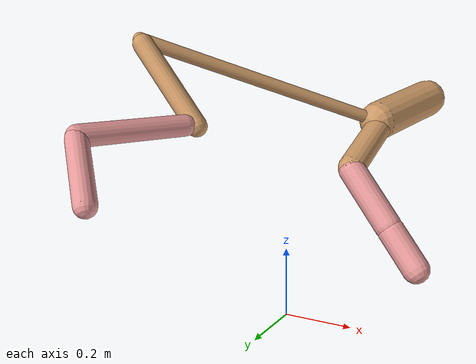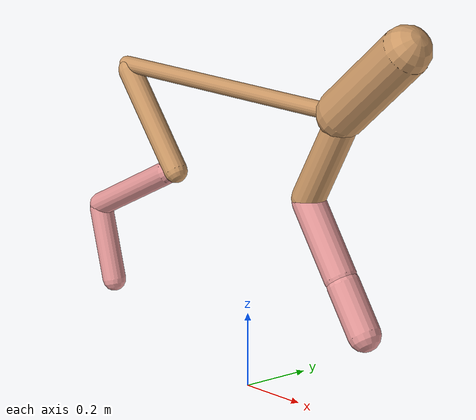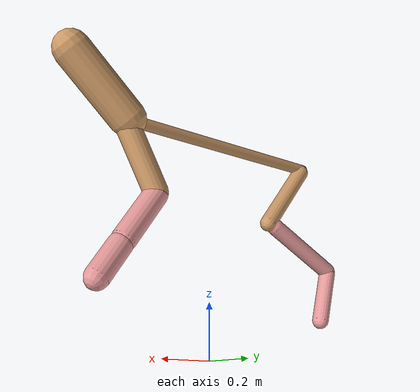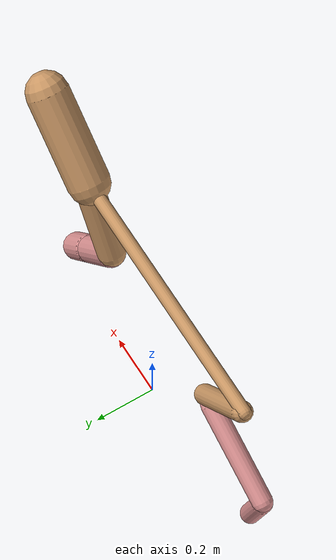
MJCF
<mujoco model="cheetah">
  <compiler angle="radian" coordinate="local" inertiafromgeom="true" settotalmass="14" />
  <default>
    <joint armature=".1" damping=".01" limited="true" solimplimit="0 .8 .03" solreflimit=".02 1" stiffness="8" />
    <geom conaffinity="0" condim="3" contype="1" friction="0.8 .1 .1" rgba="0.8 0.6 .4 1" solimp="0.0 0.8 0.01" solref="0.02 1" />
    <motor ctrllimited="true" ctrlrange="-1 1" />
  </default>
  <size nstack="300000" nuser_geom="1" />
  <option gravity="0 0 -9.81" timestep="0.01" />
  <worldbody>
    <body name="torso" pos="0.0 0.0 0.7994525438243306">
      <joint armature="0" axis="1 0 0" damping="0" limited="false" name="ignorex" pos="0 0 0" stiffness="0" type="slide" />
      <joint armature="0" axis="0 0 1" damping="0" limited="false" name="ignorez" pos="0 0 0" stiffness="0" type="slide" />
      <joint armature="0" axis="0 1 0" damping="0" limited="false" name="ignorey" pos="0 0 0" stiffness="0" type="hinge" />
      <geom fromto="-0.5 0.0 0.0 0.37386075359808746 0.0 0.0" name="torso" size="0.021636745715107614" type="capsule" />
      <geom axisangle="0 1 0 .87" name="head" pos="0.47386075359808744 0.0 0.1" size="0.06658824099992534 0.15" type="capsule" />

      <body name="bthigh" pos="-.5 0 0">
        <joint axis="0 1 0" damping="6" name="bthigh" pos="0 0 0" range="-.52 1.05" stiffness="240" type="hinge" />
        <geom axisangle="0 1 0 -3.8" name="bthigh" pos="0.10745119194382853 0.0 -0.1396865495269771" size="0.0322 0.15722086343604064" type="capsule" />
        <body name="bshin" pos="0.17490238388765705 0.0 -0.2693730990539542">
          <joint axis="0 1 0" damping="4.5" name="bshin" pos="0 0 0" range="-.785 .785" stiffness="180" type="hinge" />
          <geom axisangle="0 1 0 -2.03" name="bshin" pos="-0.15130759229795665 0.0 -0.07565379614897833" rgba="0.9 0.6 0.6 1" size="0.0322 0.16264227252004204" type="capsule" />
          <body name="bfoot" pos="-0.3026151845959133 0.0 -0.15130759229795665">
            <joint axis="0 1 0" damping="3" name="bfoot" pos="0 0 0" range="-.4 .785" stiffness="120" type="hinge" />
            <geom axisangle="0 1 0 -.27" name="bfoot" pos="0.032340856155390646 0.0 -0.10456876823576308" rgba="0.9 0.6 0.6 1" size="0.0322 0.10192249077922635" type="capsule" />
            <inertial mass="10" />
          </body>
        </body>
      </body>
      <body name="fthigh" pos="0.37386075359808746 0.0 0.0">
        <joint axis="0 1 0" damping="4.5" name="fthigh" pos="0 0 0" range="-1.5 0.8" stiffness="180" type="hinge" />
        <geom axisangle="0 1 0 .52" name="fthigh" pos="-0.0713866173032896 0.0 -0.12237705823421072" size="0.044154528349677716 0.13575192903153607" type="capsule" />
        <body name="fshin" pos="-0.1427732346065792 0.0 -0.24475411646842143">
          <joint axis="0 1 0" damping="3" name="fshin" pos="0 0 0" range="-1.2 1.1" stiffness="120" type="hinge" />
          <geom axisangle="0 1 0 -.6" name="fshin" pos="0.06628413696239345 0.0 -0.09177803579408324" rgba="0.9 0.6 0.6 1" size="0.044154528349677716 0.10819326674693852" type="capsule" />
          <body name="ffoot" pos="0.1325682739247869 0.0 -0.18355607158816648">
            <joint axis="0 1 0" damping="1.5" name="ffoot" pos="0 0 0" range="-3.1 -0.3" stiffness="60" type="hinge" />
            <geom axisangle="0 1 0 -.6" name="ffoot" pos="0.04578322448134691 0.0 -0.07121834919320631" rgba="0.9 0.6 0.6 1" size="0.044154528349677716 0.07144838370080847" type="capsule" />
            <inertial mass="10" />
          </body>
        </body>
      </body>
    </body>
  </worldbody>
  <actuator>
    <motor gear="120" joint="bthigh" name="bthigh" />
    <motor gear="90" joint="bshin" name="bshin" />
    <motor gear="60" joint="bfoot" name="bfoot" />
    <motor gear="120" joint="fthigh" name="fthigh" />
    <motor gear="60" joint="fshin" name="fshin" />
    <motor gear="30" joint="ffoot" name="ffoot" />
  </actuator>
</mujoco>
